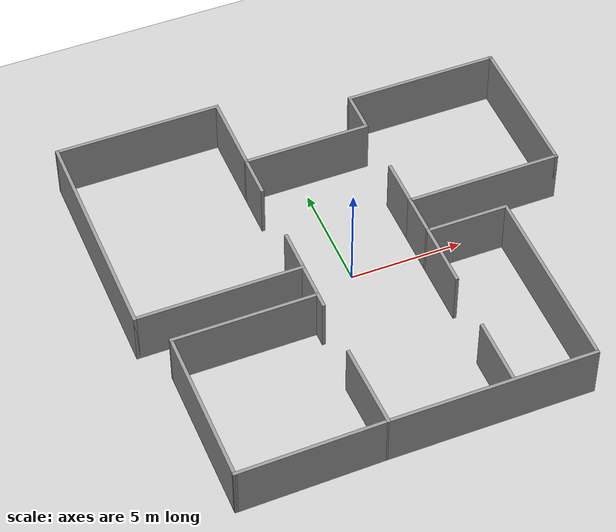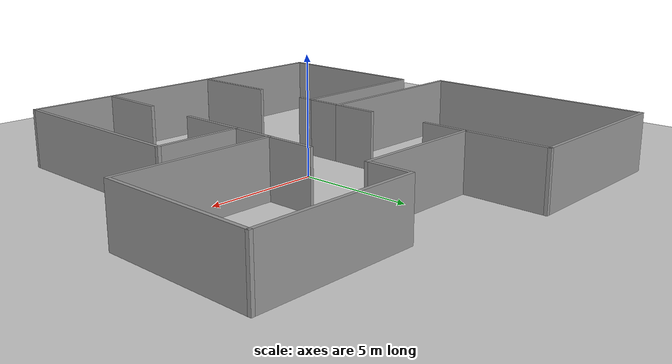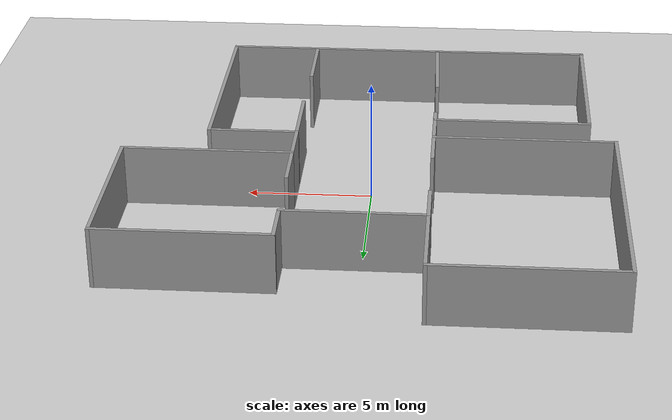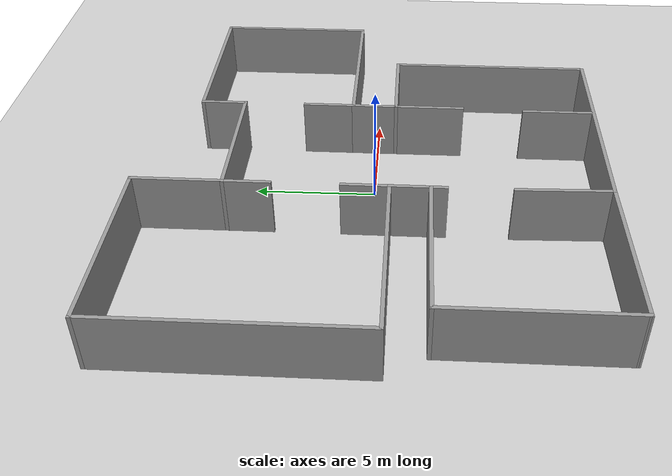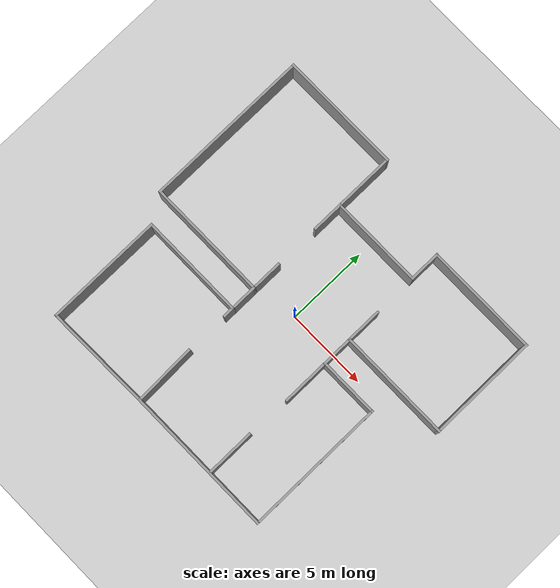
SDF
<sdf version="1.7">
 <world name="default">
  <light name="sun" type="directional">
   <pose>0 0 10 0 -0 0</pose>
   <diffuse>0.8 0.8 0.8 1</diffuse>
   <specular>0.2 0.2 0.2 1</specular>
   <attenuation>
    <range>1000</range>
    <constant>0.9</constant>
    <linear>0.01</linear>
    <quadratic>0.001</quadratic>
   </attenuation>
   <direction>-0.5 0.1 -0.9</direction>
   <spot><inner_angle>0</inner_angle><outer_angle>0</outer_angle><falloff>0</falloff></spot>
  </light>
  <model name="ground_plane">
   <static>1</static>
   <link name="link">
    <collision name="collision">
     <geometry><plane><normal>0 0 1</normal><size>100 100</size></plane></geometry>
     <surface><friction><ode><mu>100</mu><mu2>50</mu2></ode></friction></surface>
    </collision>
    <visual name="visual">
     <cast_shadows>0</cast_shadows>
     <geometry><plane><normal>0 0 1</normal><size>100 100</size></plane></geometry>
     <material>
      <script><uri>file://media/materials/scripts/gazebo.material</uri><name>Gazebo/Grey</name></script>
     </material>
    </visual>
   </link>
  </model>
  <gravity>0 0 -9.8</gravity>
  <magnetic_field>6e-06 2.3e-05 -4.2e-05</magnetic_field>
  <atmosphere type="adiabatic"/>
  <physics type="ode">
   <max_step_size>0.001</max_step_size>
   <real_time_factor>1</real_time_factor>
   <real_time_update_rate>1000</real_time_update_rate>
  </physics>
  <scene><ambient>0.4 0.4 0.4 1</ambient><background>0.7 0.7 0.7 1</background><shadows>1</shadows></scene>
  <audio><device>default</device></audio>
  <spherical_coordinates>
   <surface_model>EARTH_WGS84</surface_model>
   <latitude_deg>0</latitude_deg>
   <longitude_deg>0</longitude_deg>
   <elevation>0</elevation>
   <heading_deg>0</heading_deg>
  </spherical_coordinates>
  <model name="simple">
   <pose>0.049086 0.036307 0 0 -0 0</pose>
   <link name="Wall_10">
    <collision name="Wall_10_Collision">
     <geometry><box><size>7 0.15 2.5</size></box></geometry>
     <pose>0 0 1.25 0 -0 0</pose>
    </collision>
    <visual name="Wall_10_Visual">
     <pose>0 0 1.25 0 -0 0</pose>
     <geometry><box><size>7 0.15 2.5</size></box></geometry>
     <material>
      <script><uri>file://media/materials/scripts/gazebo.material</uri><name>Gazebo/Grey</name></script>
      <ambient>1 1 1 1</ambient>
     </material>
     <meta><layer>0</layer></meta>
    </visual>
    <pose>6.475 1.05055 0 0 -0 0</pose>
   </link>
   <link name="Wall_11">
    <collision name="Wall_11_Collision">
     <geometry><box><size>6.75 0.15 2.5</size></box></geometry>
     <pose>0 0 1.25 0 -0 0</pose>
    </collision>
    <visual name="Wall_11_Visual">
     <pose>0 0 1.25 0 -0 0</pose>
     <geometry><box><size>6.75 0.15 2.5</size></box></geometry>
     <material>
      <script><uri>file://media/materials/scripts/gazebo.material</uri><name>Gazebo/Grey</name></script>
      <ambient>1 1 1 1</ambient>
     </material>
     <meta><layer>0</layer></meta>
    </visual>
    <pose>9.9 4.35055 0 0 -0 1.5708</pose>
   </link>
   <link name="Wall_12">
    <collision name="Wall_12_Collision">
     <geometry><box><size>7 0.15 2.5</size></box></geometry>
     <pose>0 0 1.25 0 -0 0</pose>
    </collision>
    <visual name="Wall_12_Visual">
     <pose>0 0 1.25 0 -0 0</pose>
     <geometry><box><size>7 0.15 2.5</size></box></geometry>
     <material>
      <script><uri>file://media/materials/scripts/gazebo.material</uri><name>Gazebo/Grey</name></script>
      <ambient>1 1 1 1</ambient>
     </material>
     <meta><layer>0</layer></meta>
    </visual>
    <pose>6.475 7.65055 0 0 -0 3.14159</pose>
   </link>
   <link name="Wall_13">
    <collision name="Wall_13_Collision">
     <geometry><box><size>2 0.15 2.5</size></box></geometry>
     <pose>0 0 1.25 0 -0 0</pose>
    </collision>
    <visual name="Wall_13_Visual">
     <pose>0 0 1.25 0 -0 0</pose>
     <geometry><box><size>2 0.15 2.5</size></box></geometry>
     <material>
      <script><uri>file://media/materials/scripts/gazebo.material</uri><name>Gazebo/Grey</name></script>
      <ambient>1 1 1 1</ambient>
     </material>
     <meta><layer>0</layer></meta>
    </visual>
    <pose>3.05 6.72555 0 0 -0 -1.5708</pose>
   </link>
   <link name="Wall_14">
    <collision name="Wall_14_Collision">
     <geometry><box><size>5.75 0.15 2.5</size></box></geometry>
     <pose>0 0 1.25 0 -0 0</pose>
    </collision>
    <visual name="Wall_14_Visual">
     <pose>0 0 1.25 0 -0 0</pose>
     <geometry><box><size>5.75 0.15 2.5</size></box></geometry>
     <material>
      <script><uri>file://media/materials/scripts/gazebo.material</uri><name>Gazebo/Grey</name></script>
      <ambient>1 1 1 1</ambient>
     </material>
     <meta><layer>0</layer></meta>
    </visual>
    <pose>0.25 5.80055 0 0 -0 3.14159</pose>
   </link>
   <link name="Wall_15">
    <collision name="Wall_15_Collision">
     <geometry><box><size>3.75 0.15 2.5</size></box></geometry>
     <pose>0 0 1.25 0 -0 0</pose>
    </collision>
    <visual name="Wall_15_Visual">
     <pose>0 0 1.25 0 -0 0</pose>
     <geometry><box><size>3.75 0.15 2.5</size></box></geometry>
     <material>
      <script><uri>file://media/materials/scripts/gazebo.material</uri><name>Gazebo/Grey</name></script>
      <ambient>1 1 1 1</ambient>
     </material>
     <meta><layer>0</layer></meta>
    </visual>
    <pose>-2.55 7.60055 0 0 -0 1.5708</pose>
   </link>
   <link name="Wall_16">
    <collision name="Wall_16_Collision">
     <geometry><box><size>7.5 0.15 2.5</size></box></geometry>
     <pose>0 0 1.25 0 -0 0</pose>
    </collision>
    <visual name="Wall_16_Visual">
     <pose>0 0 1.25 0 -0 0</pose>
     <geometry><box><size>7.5 0.15 2.5</size></box></geometry>
     <material>
      <script><uri>file://media/materials/scripts/gazebo.material</uri><name>Gazebo/Grey</name></script>
      <ambient>1 1 1 1</ambient>
     </material>
     <meta><layer>0</layer></meta>
    </visual>
    <pose>-6.225 9.40055 0 0 -0 3.14159</pose>
   </link>
   <link name="Wall_17">
    <collision name="Wall_17_Collision">
     <geometry><box><size>10.25 0.15 2.5</size></box></geometry>
     <pose>0 0 1.25 0 -0 0</pose>
    </collision>
    <visual name="Wall_17_Visual">
     <pose>0 0 1.25 0 -0 0</pose>
     <geometry><box><size>10.25 0.15 2.5</size></box></geometry>
     <material>
      <script><uri>file://media/materials/scripts/gazebo.material</uri><name>Gazebo/Grey</name></script>
      <ambient>1 1 1 1</ambient>
     </material>
     <meta><layer>0</layer></meta>
    </visual>
    <pose>-9.9 4.35055 0 0 -0 -1.5708</pose>
   </link>
   <link name="Wall_18">
    <collision name="Wall_18_Collision">
     <geometry><box><size>7.5 0.15 2.5</size></box></geometry>
     <pose>0 0 1.25 0 -0 0</pose>
    </collision>
    <visual name="Wall_18_Visual">
     <pose>0 0 1.25 0 -0 0</pose>
     <geometry><box><size>7.5 0.15 2.5</size></box></geometry>
     <material>
      <script><uri>file://media/materials/scripts/gazebo.material</uri><name>Gazebo/Grey</name></script>
      <ambient>1 1 1 1</ambient>
     </material>
     <meta><layer>0</layer></meta>
    </visual>
    <pose>-6.225 -0.699453 0 0 -0 0</pose>
   </link>
   <link name="Wall_19">
    <collision name="Wall_19_Collision">
     <geometry><box><size>1.75 0.15 2.5</size></box></geometry>
     <pose>0 0 1.25 0 -0 0</pose>
    </collision>
    <visual name="Wall_19_Visual">
     <pose>0 0 1.25 0 -0 0</pose>
     <geometry><box><size>1.75 0.15 2.5</size></box></geometry>
     <material>
      <script><uri>file://media/materials/scripts/gazebo.material</uri><name>Gazebo/Grey</name></script>
      <ambient>1 1 1 1</ambient>
     </material>
     <meta><layer>0</layer></meta>
    </visual>
    <pose>-2.55 -1.49945 0 0 -0 -1.5708</pose>
   </link>
   <link name="Wall_20">
    <collision name="Wall_20_Collision">
     <geometry><box><size>6.5 0.15 2.5</size></box></geometry>
     <pose>0 0 1.25 0 -0 0</pose>
    </collision>
    <visual name="Wall_20_Visual">
     <pose>0 0 1.25 0 -0 0</pose>
     <geometry><box><size>6.5 0.15 2.5</size></box></geometry>
     <material>
      <script><uri>file://media/materials/scripts/gazebo.material</uri><name>Gazebo/Grey</name></script>
      <ambient>1 1 1 1</ambient>
     </material>
     <meta><layer>0</layer></meta>
    </visual>
    <pose>-5.725 -2.29945 0 0 -0 3.14159</pose>
   </link>
   <link name="Wall_21">
    <collision name="Wall_21_Collision">
     <geometry><box><size>7.25 0.15 2.5</size></box></geometry>
     <pose>0 0 1.25 0 -0 0</pose>
    </collision>
    <visual name="Wall_21_Visual">
     <pose>0 0 1.25 0 -0 0</pose>
     <geometry><box><size>7.25 0.15 2.5</size></box></geometry>
     <material>
      <script><uri>file://media/materials/scripts/gazebo.material</uri><name>Gazebo/Grey</name></script>
      <ambient>1 1 1 1</ambient>
     </material>
     <meta><layer>0</layer></meta>
    </visual>
    <pose>-8.9 -5.84945 0 0 -0 -1.5708</pose>
   </link>
   <link name="Wall_23">
    <collision name="Wall_23_Collision">
     <geometry><box><size>6.59534 0.15 2.5</size></box></geometry>
     <pose>0 0 1.25 0 -0 0</pose>
    </collision>
    <visual name="Wall_23_Visual">
     <pose>0 0 1.25 0 -0 0</pose>
     <geometry><box><size>6.59534 0.15 2.5</size></box></geometry>
     <material>
      <script><uri>file://media/materials/scripts/gazebo.material</uri><name>Gazebo/Grey</name></script>
      <ambient>1 1 1 1</ambient>
     </material>
     <meta><layer>0</layer></meta>
    </visual>
    <pose>-5.67768 -9.35213 0 0 -0 0.014684</pose>
   </link>
   <link name="Wall_24">
    <collision name="Wall_24_Collision">
     <geometry><box><size>3.90655 0.15 2.5</size></box></geometry>
     <pose>0 0 1.25 0 -0 0</pose>
    </collision>
    <visual name="Wall_24_Visual">
     <pose>0 0 1.25 0 -0 0</pose>
     <geometry><box><size>3.90655 0.15 2.5</size></box></geometry>
     <material>
      <script><uri>file://media/materials/scripts/gazebo.material</uri><name>Gazebo/Grey</name></script>
      <ambient>1 1 1 1</ambient>
     </material>
     <meta><layer>0</layer></meta>
    </visual>
    <pose>-2.50268 -7.42713 0 0 -0 1.59599</pose>
   </link>
   <link name="Wall_26">
    <collision name="Wall_26_Collision">
     <geometry><box><size>0.75 0.15 2.5</size></box></geometry>
     <pose>0 0 1.25 0 -0 0</pose>
    </collision>
    <visual name="Wall_26_Visual">
     <pose>0 0 1.25 0 -0 0</pose>
     <geometry><box><size>0.75 0.15 2.5</size></box></geometry>
     <material>
      <script><uri>file://media/materials/scripts/gazebo.material</uri><name>Gazebo/Grey</name></script>
      <ambient>1 1 1 1</ambient>
     </material>
     <meta><layer>0</layer></meta>
    </visual>
    <pose>-2.55 -2.59945 0 0 -0 -1.5708</pose>
   </link>
   <link name="Wall_32">
    <collision name="Wall_32_Collision">
     <geometry><box><size>3 0.15 2.5</size></box></geometry>
     <pose>0 0 1.25 0 -0 0</pose>
    </collision>
    <visual name="Wall_32_Visual">
     <pose>0 0 1.25 0 -0 0</pose>
     <geometry><box><size>3 0.15 2.5</size></box></geometry>
     <material>
      <script><uri>file://media/materials/scripts/gazebo.material</uri><name>Gazebo/Grey</name></script>
      <ambient>1 1 1 1</ambient>
     </material>
     <meta><layer>0</layer></meta>
    </visual>
    <pose>3.05 -2.22445 0 0 -0 -1.5708</pose>
   </link>
   <link name="Wall_34">
    <collision name="Wall_34_Collision">
     <geometry><box><size>2 0.15 2.5</size></box></geometry>
     <pose>0 0 1.25 0 -0 0</pose>
    </collision>
    <visual name="Wall_34_Visual">
     <pose>0 0 1.25 0 -0 0</pose>
     <geometry><box><size>2 0.15 2.5</size></box></geometry>
     <material>
      <script><uri>file://media/materials/scripts/gazebo.material</uri><name>Gazebo/Grey</name></script>
      <ambient>1 1 1 1</ambient>
     </material>
     <meta><layer>0</layer></meta>
    </visual>
    <pose>-2.55 0.225547 0 0 -0 1.5708</pose>
   </link>
   <link name="Wall_36">
    <collision name="Wall_36_Collision">
     <geometry><box><size>2 0.15 2.5</size></box></geometry>
     <pose>0 0 1.25 0 -0 0</pose>
    </collision>
    <visual name="Wall_36_Visual">
     <pose>0 0 1.25 0 -0 0</pose>
     <geometry><box><size>2 0.15 2.5</size></box></geometry>
     <material>
      <script><uri>file://media/materials/scripts/gazebo.material</uri><name>Gazebo/Grey</name></script>
      <ambient>1 1 1 1</ambient>
     </material>
     <meta><layer>0</layer></meta>
    </visual>
    <pose>-2.55 4.87555 0 0 -0 -1.5708</pose>
   </link>
   <link name="Wall_38">
    <collision name="Wall_38_Collision">
     <geometry><box><size>2.25 0.15 2.5</size></box></geometry>
     <pose>0 0 1.25 0 -0 0</pose>
    </collision>
    <visual name="Wall_38_Visual">
     <pose>0 0 1.25 0 -0 0</pose>
     <geometry><box><size>2.25 0.15 2.5</size></box></geometry>
     <material>
      <script><uri>file://media/materials/scripts/gazebo.material</uri><name>Gazebo/Grey</name></script>
      <ambient>1 1 1 1</ambient>
     </material>
     <meta><layer>0</layer></meta>
    </visual>
    <pose>3.05 2.10055 0 0 -0 1.5708</pose>
   </link>
   <link name="Wall_41">
    <collision name="Wall_41_Collision">
     <geometry><box><size>9.25 0.15 2.5</size></box></geometry>
     <pose>0 0 1.25 0 -0 0</pose>
    </collision>
    <visual name="Wall_41_Visual">
     <pose>0 0 1.25 0 -0 0</pose>
     <geometry><box><size>9.25 0.15 2.5</size></box></geometry>
     <material>
      <script><uri>file://media/materials/scripts/gazebo.material</uri><name>Gazebo/Grey</name></script>
      <ambient>1 1 1 1</ambient>
     </material>
     <meta><layer>0</layer></meta>
    </visual>
    <pose>2.09464 -9.30481 0 0 -0 0</pose>
   </link>
   <link name="Wall_43">
    <collision name="Wall_43_Collision">
     <geometry><box><size>3 0.15 2.5</size></box></geometry>
     <pose>0 0 1.25 0 -0 0</pose>
    </collision>
    <visual name="Wall_43_Visual">
     <pose>0 0 1.25 0 -0 0</pose>
     <geometry><box><size>3 0.15 2.5</size></box></geometry>
     <material>
      <script><uri>file://media/materials/scripts/gazebo.material</uri><name>Gazebo/Grey</name></script>
      <ambient>1 1 1 1</ambient>
     </material>
     <meta><layer>0</layer></meta>
    </visual>
    <pose>2.96077 -7.76635 0 0 -0 1.5708</pose>
   </link>
   <link name="Wall_7">
    <collision name="Wall_7_Collision">
     <geometry><box><size>8.5 0.15 2.5</size></box></geometry>
     <pose>0 0 1.25 0 -0 0</pose>
    </collision>
    <visual name="Wall_7_Visual">
     <pose>0 0 1.25 0 -0 0</pose>
     <geometry><box><size>8.5 0.15 2.5</size></box></geometry>
     <material>
      <script><uri>file://media/materials/scripts/gazebo.material</uri><name>Gazebo/Grey</name></script>
      <ambient>1 1 1 1</ambient>
     </material>
     <meta><layer>0</layer></meta>
    </visual>
    <pose>6.65 -4.97445 0 0 -0 1.5708</pose>
   </link>
   <link name="Wall_8">
    <collision name="Wall_8_Collision">
     <geometry><box><size>3.75 0.15 2.5</size></box></geometry>
     <pose>0 0 1.25 0 -0 0</pose>
    </collision>
    <visual name="Wall_8_Visual">
     <pose>0 0 1.25 0 -0 0</pose>
     <geometry><box><size>3.75 0.15 2.5</size></box></geometry>
     <material>
      <script><uri>file://media/materials/scripts/gazebo.material</uri><name>Gazebo/Grey</name></script>
      <ambient>1 1 1 1</ambient>
     </material>
     <meta><layer>0</layer></meta>
    </visual>
    <pose>4.85 -0.799453 0 0 -0 3.14159</pose>
   </link>
   <link name="Wall_9">
    <collision name="Wall_9_Collision">
     <geometry><box><size>2 0.15 2.5</size></box></geometry>
     <pose>0 0 1.25 0 -0 0</pose>
    </collision>
    <visual name="Wall_9_Visual">
     <pose>0 0 1.25 0 -0 0</pose>
     <geometry><box><size>2 0.15 2.5</size></box></geometry>
     <material>
      <script><uri>file://media/materials/scripts/gazebo.material</uri><name>Gazebo/Grey</name></script>
      <ambient>1 1 1 1</ambient>
     </material>
     <meta><layer>0</layer></meta>
    </visual>
    <pose>3.05 0.125546 0 0 -0 1.5708</pose>
   </link>
   <static>1</static>
  </model>
 </world>
</sdf>
